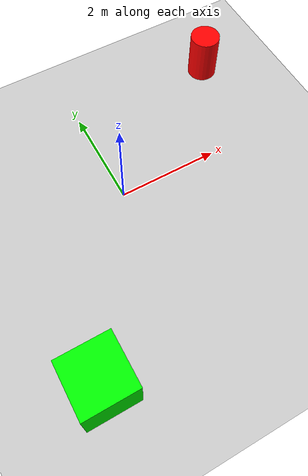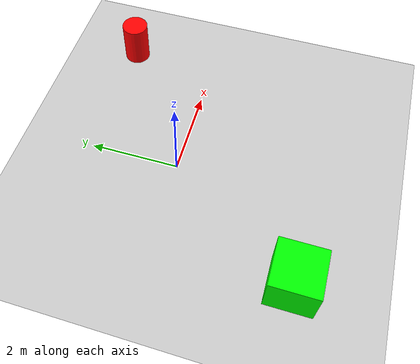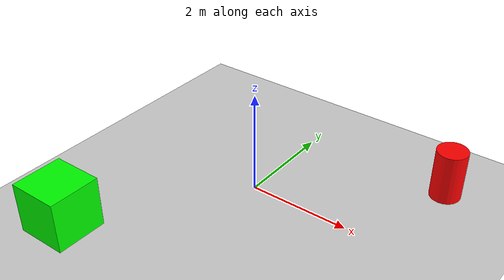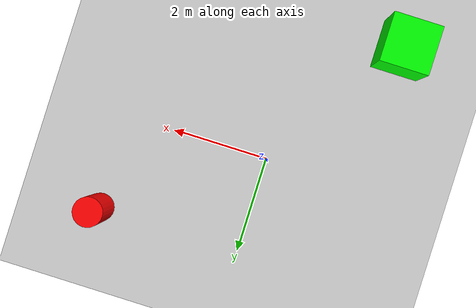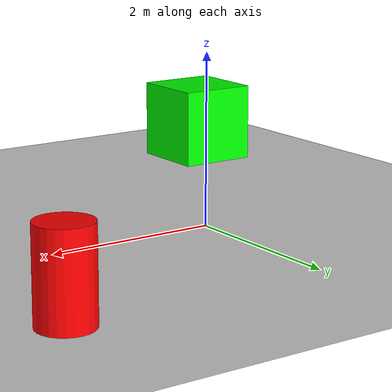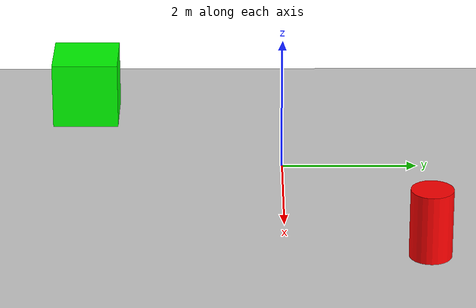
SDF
<?xml version="1.0" ?>
<sdf version="1.6">
  <world name="swarm_test">
    <include>
      <uri>model://ground_plane</uri>
    </include>
    <include>
      <uri>model://sun</uri>
    </include>

    <!-- Add some obstacles for testing -->
    <model name="obstacle1">
      <pose>3 2 0.5 0 0 0</pose>
      <static>true</static>
      <link name="link">
        <collision name="collision">
          <geometry>
            <cylinder>
              <radius>0.3</radius>
              <length>1.0</length>
            </cylinder>
          </geometry>
        </collision>
        <visual name="visual">
          <geometry>
            <cylinder>
              <radius>0.3</radius>
              <length>1.0</length>
            </cylinder>
          </geometry>
          <material>
            <ambient>1 0 0 1</ambient>
          </material>
        </visual>
      </link>
    </model>

    <model name="obstacle2">
      <pose>-2 -3 0.5 0 0 0</pose>
      <static>true</static>
      <link name="link">
        <collision name="collision">
          <geometry>
            <box>
              <size>1 1 1</size>
            </box>
          </geometry>
        </collision>
        <visual name="visual">
          <geometry>
            <box>
              <size>1 1 1</size>
            </box>
          </geometry>
          <material>
            <ambient>0 1 0 1</ambient>
          </material>
        </visual>
      </link>
    </model>
  </world>
</sdf>
